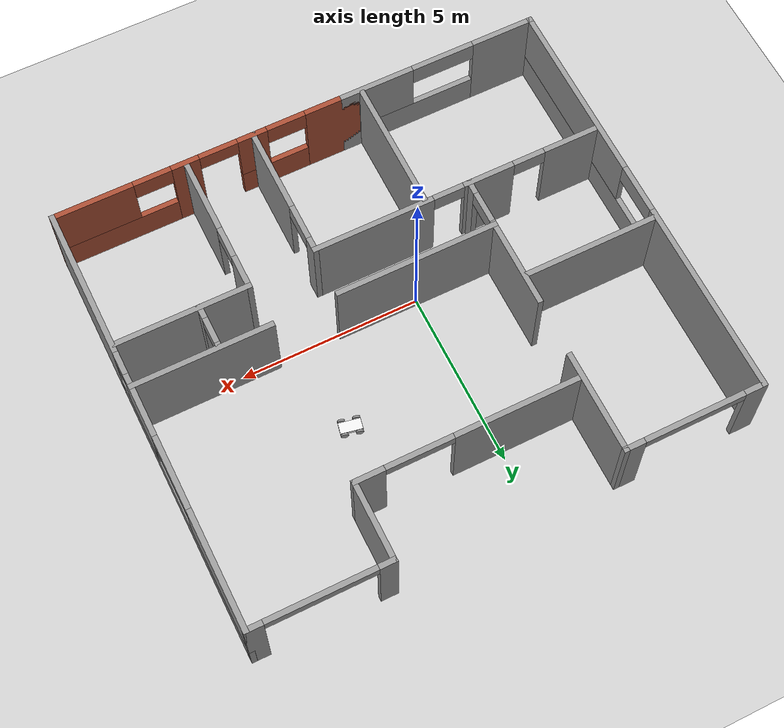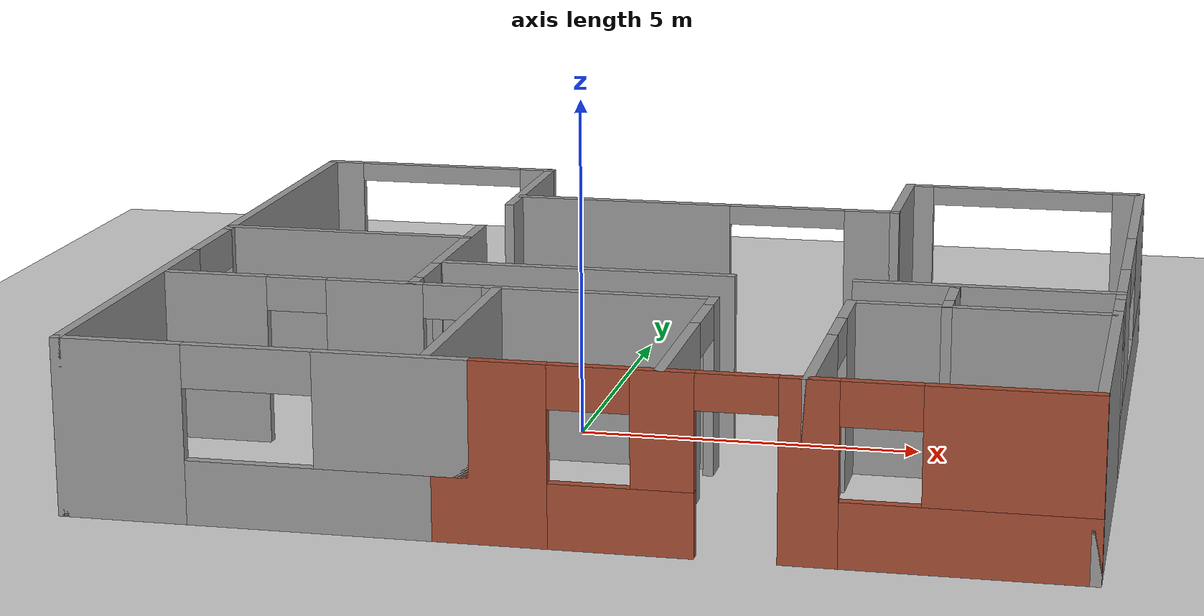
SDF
<sdf version="1.6">
 <world name="default">
  <model name="ground_plane">
   <static>1</static>
   <link name="link">
    <collision name="collision">
     <geometry><plane><normal>0 0 1</normal><size>100 100</size></plane></geometry>
     <surface>
      <contact><collide_bitmask>65535</collide_bitmask></contact>
      <friction><ode><mu>100</mu><mu2>50</mu2></ode></friction>
     </surface>
    </collision>
    <visual name="visual">
     <cast_shadows>0</cast_shadows>
     <geometry><plane><normal>0 0 1</normal><size>100 100</size></plane></geometry>
     <material>
      <script><uri>file://media/materials/scripts/gazebo.material</uri><name>Gazebo/Grey</name></script>
     </material>
    </visual>
   </link>
  </model>
  <model name="house_14x12">
   <pose>0.906 0.85996 0 0 -0 0</pose>
   <link name="Wall_0">
    <pose>2.61541 -6 0 0 -0 0</pose>
    <visual name="Wall_0_Visual_0">
     <pose>-3.57818 0 1.25 0 -0 0</pose>
     <geometry><box><size>1.56302 0.15 2.5</size></box></geometry>
     <material>
      <script><uri>file://media/materials/scripts/gazebo.material</uri><name>Gazebo/Bricks</name></script>
      <ambient>1 1 1 1</ambient>
     </material>
     <meta><layer>0</layer></meta>
    </visual>
    <collision name="Wall_0_Collision_0">
     <geometry><box><size>1.56302 0.15 2.5</size></box></geometry>
     <pose>-3.57818 0 1.25 0 -0 0</pose>
    </collision>
    <visual name="Wall_0_Visual_1">
     <pose>0.622351 0 1.25 0 -0 0</pose>
     <geometry><box><size>0.782201 0.15 2.5</size></box></geometry>
     <material>
      <script><uri>file://media/materials/scripts/gazebo.material</uri><name>Gazebo/Bricks</name></script>
      <ambient>1 1 1 1</ambient>
     </material>
     <meta><layer>0</layer></meta>
    </visual>
    <collision name="Wall_0_Collision_1">
     <geometry><box><size>0.782201 0.15 2.5</size></box></geometry>
     <pose>0.622351 0 1.25 0 -0 0</pose>
    </collision>
    <visual name="Wall_0_Visual_2">
     <pose>-1.82581 0 0.45 0 -0 0</pose>
     <geometry><box><size>1.94171 0.15 0.9</size></box></geometry>
     <material>
      <script><uri>file://media/materials/scripts/gazebo.material</uri><name>Gazebo/Bricks</name></script>
      <ambient>1 1 1 1</ambient>
     </material>
     <meta><layer>0</layer></meta>
    </visual>
    <collision name="Wall_0_Collision_2">
     <geometry><box><size>1.94171 0.15 0.9</size></box></geometry>
     <pose>-1.82581 0 0.45 0 -0 0</pose>
    </collision>
    <visual name="Wall_0_Visual_3">
     <pose>2.68657 0 0.45 0 -0 0</pose>
     <geometry><box><size>3.34624 0.15 0.9</size></box></geometry>
     <material>
      <script><uri>file://media/materials/scripts/gazebo.material</uri><name>Gazebo/Bricks</name></script>
      <ambient>1 1 1 1</ambient>
     </material>
     <meta><layer>0</layer></meta>
    </visual>
    <collision name="Wall_0_Collision_3">
     <geometry><box><size>3.34624 0.15 0.9</size></box></geometry>
     <pose>2.68657 0 0.45 0 -0 0</pose>
    </collision>
    <visual name="Wall_0_Visual_4">
     <pose>-1.27581 0 1.7 0 -0 0</pose>
     <geometry><box><size>0.841714 0.15 1.6</size></box></geometry>
     <material>
      <script><uri>file://media/materials/scripts/gazebo.material</uri><name>Gazebo/Bricks</name></script>
      <ambient>1 1 1 1</ambient>
     </material>
     <meta><layer>0</layer></meta>
    </visual>
    <collision name="Wall_0_Collision_4">
     <geometry><box><size>0.841714 0.15 1.6</size></box></geometry>
     <pose>-1.27581 0 1.7 0 -0 0</pose>
    </collision>
    <visual name="Wall_0_Visual_5">
     <pose>-1.27581 0 1.7 0 -0 0</pose>
     <geometry><box><size>0.841714 0.15 1.6</size></box></geometry>
     <material>
      <script><uri>file://media/materials/scripts/gazebo.material</uri><name>Gazebo/Bricks</name></script>
      <ambient>1 1 1 1</ambient>
     </material>
     <meta><layer>0</layer></meta>
    </visual>
    <collision name="Wall_0_Collision_5">
     <geometry><box><size>0.841714 0.15 1.6</size></box></geometry>
     <pose>-1.27581 0 1.7 0 -0 0</pose>
    </collision>
    <visual name="Wall_0_Visual_6">
     <pose>3.21657 0 1.7 0 -0 0</pose>
     <geometry><box><size>2.28624 0.15 1.6</size></box></geometry>
     <material>
      <script><uri>file://media/materials/scripts/gazebo.material</uri><name>Gazebo/Bricks</name></script>
      <ambient>1 1 1 1</ambient>
     </material>
     <meta><layer>0</layer></meta>
    </visual>
    <collision name="Wall_0_Collision_6">
     <geometry><box><size>2.28624 0.15 1.6</size></box></geometry>
     <pose>3.21657 0 1.7 0 -0 0</pose>
    </collision>
    <visual name="Wall_0_Visual_7">
     <pose>-2.24667 0 2.2 0 -0 0</pose>
     <geometry><box><size>1.1 0.15 0.6</size></box></geometry>
     <material>
      <script><uri>file://media/materials/scripts/gazebo.material</uri><name>Gazebo/Bricks</name></script>
      <ambient>1 1 1 1</ambient>
     </material>
     <meta><layer>0</layer></meta>
    </visual>
    <collision name="Wall_0_Collision_7">
     <geometry><box><size>1.1 0.15 0.6</size></box></geometry>
     <pose>-2.24667 0 2.2 0 -0 0</pose>
    </collision>
    <visual name="Wall_0_Visual_8">
     <pose>1.54345 0 2.2 0 -0 0</pose>
     <geometry><box><size>1.06 0.15 0.6</size></box></geometry>
     <material>
      <script><uri>file://media/materials/scripts/gazebo.material</uri><name>Gazebo/Bricks</name></script>
      <ambient>1 1 1 1</ambient>
     </material>
     <meta><layer>0</layer></meta>
    </visual>
    <collision name="Wall_0_Collision_8">
     <geometry><box><size>1.06 0.15 0.6</size></box></geometry>
     <pose>1.54345 0 2.2 0 -0 0</pose>
    </collision>
    <visual name="Wall_0_Visual_9">
     <pose>-0.311851 0 2.25 0 -0 0</pose>
     <geometry><box><size>1.0862 0.15 0.5</size></box></geometry>
     <material>
      <script><uri>file://media/materials/scripts/gazebo.material</uri><name>Gazebo/Bricks</name></script>
      <ambient>1 1 1 1</ambient>
     </material>
     <meta><layer>0</layer></meta>
    </visual>
    <collision name="Wall_0_Collision_9">
     <geometry><box><size>1.0862 0.15 0.5</size></box></geometry>
     <pose>-0.311851 0 2.25 0 -0 0</pose>
    </collision>
    <visual name="Wall_0_Visual_10">
     <pose>-0.311851 0 2.25 0 -0 0</pose>
     <geometry><box><size>1.0862 0.15 0.5</size></box></geometry>
     <material>
      <script><uri>file://media/materials/scripts/gazebo.material</uri><name>Gazebo/Bricks</name></script>
      <ambient>1 1 1 1</ambient>
     </material>
     <meta><layer>0</layer></meta>
    </visual>
    <collision name="Wall_0_Collision_10">
     <geometry><box><size>1.0862 0.15 0.5</size></box></geometry>
     <pose>-0.311851 0 2.25 0 -0 0</pose>
    </collision>
   </link>
   <link name="Wall_1">
    <pose>6.89991 0 0 0 -0 1.5708</pose>
    <visual name="Wall_1_Visual_0">
     <pose>-3.93298 0 1.25 0 -0 0</pose>
     <geometry><box><size>4.28404 0.15 2.5</size></box></geometry>
     <material>
      <script><uri>file://media/materials/scripts/gazebo.material</uri><name>Gazebo/Grey</name></script>
      <ambient>1 1 1 1</ambient>
     </material>
     <meta><layer>0</layer></meta>
    </visual>
    <collision name="Wall_1_Collision_0">
     <geometry><box><size>4.28404 0.15 2.5</size></box></geometry>
     <pose>-3.93298 0 1.25 0 -0 0</pose>
    </collision>
    <visual name="Wall_1_Visual_1">
     <pose>2.14202 0 0.45 0 -0 0</pose>
     <geometry><box><size>7.86596 0.15 0.9</size></box></geometry>
     <material>
      <script><uri>file://media/materials/scripts/gazebo.material</uri><name>Gazebo/Grey</name></script>
      <ambient>1 1 1 1</ambient>
     </material>
     <meta><layer>0</layer></meta>
    </visual>
    <collision name="Wall_1_Collision_1">
     <geometry><box><size>7.86596 0.15 0.9</size></box></geometry>
     <pose>2.14202 0 0.45 0 -0 0</pose>
    </collision>
    <visual name="Wall_1_Visual_2">
     <pose>-0.22565 0 1.7 0 -0 0</pose>
     <geometry><box><size>1.81063 0.15 1.6</size></box></geometry>
     <material>
      <script><uri>file://media/materials/scripts/gazebo.material</uri><name>Gazebo/Grey</name></script>
      <ambient>1 1 1 1</ambient>
     </material>
     <meta><layer>0</layer></meta>
    </visual>
    <collision name="Wall_1_Collision_2">
     <geometry><box><size>1.81063 0.15 1.6</size></box></geometry>
     <pose>-0.22565 0 1.7 0 -0 0</pose>
    </collision>
    <visual name="Wall_1_Visual_3">
     <pose>4.40773 0 1.7 0 -0 0</pose>
     <geometry><box><size>3.33453 0.15 1.6</size></box></geometry>
     <material>
      <script><uri>file://media/materials/scripts/gazebo.material</uri><name>Gazebo/Grey</name></script>
      <ambient>1 1 1 1</ambient>
     </material>
     <meta><layer>0</layer></meta>
    </visual>
    <collision name="Wall_1_Collision_3">
     <geometry><box><size>3.33453 0.15 1.6</size></box></geometry>
     <pose>4.40773 0 1.7 0 -0 0</pose>
    </collision>
    <visual name="Wall_1_Visual_4">
     <pose>-1.46096 0 2.2 0 -0 0</pose>
     <geometry><box><size>0.66 0.15 0.6</size></box></geometry>
     <material>
      <script><uri>file://media/materials/scripts/gazebo.material</uri><name>Gazebo/Grey</name></script>
      <ambient>1 1 1 1</ambient>
     </material>
     <meta><layer>0</layer></meta>
    </visual>
    <collision name="Wall_1_Collision_4">
     <geometry><box><size>0.66 0.15 0.6</size></box></geometry>
     <pose>-1.46096 0 2.2 0 -0 0</pose>
    </collision>
    <visual name="Wall_1_Visual_5">
     <pose>1.71007 0 2.2 0 -0 0</pose>
     <geometry><box><size>2.06081 0.15 0.6</size></box></geometry>
     <material>
      <script><uri>file://media/materials/scripts/gazebo.material</uri><name>Gazebo/Grey</name></script>
      <ambient>1 1 1 1</ambient>
     </material>
     <meta><layer>0</layer></meta>
    </visual>
    <collision name="Wall_1_Collision_5">
     <geometry><box><size>2.06081 0.15 0.6</size></box></geometry>
     <pose>1.71007 0 2.2 0 -0 0</pose>
    </collision>
   </link>
   <link name="Wall_11">
    <pose>-2.72509 -2.2 0 0 -0 0</pose>
    <visual name="Wall_11_Visual_0">
     <pose>-3.32192 0 1.25 0 -0 0</pose>
     <geometry><box><size>1.55616 0.15 2.5</size></box></geometry>
     <material>
      <script><uri>file://media/materials/scripts/gazebo.material</uri><name>Gazebo/Grey</name></script>
      <ambient>1 1 1 1</ambient>
     </material>
     <meta><layer>0</layer></meta>
    </visual>
    <collision name="Wall_11_Collision_0">
     <geometry><box><size>1.55616 0.15 2.5</size></box></geometry>
     <pose>-3.32192 0 1.25 0 -0 0</pose>
    </collision>
    <visual name="Wall_11_Visual_1">
     <pose>-0.918635 0 1.25 0 -0 0</pose>
     <geometry><box><size>1.45041 0.15 2.5</size></box></geometry>
     <material>
      <script><uri>file://media/materials/scripts/gazebo.material</uri><name>Gazebo/Grey</name></script>
      <ambient>1 1 1 1</ambient>
     </material>
     <meta><layer>0</layer></meta>
    </visual>
    <collision name="Wall_11_Collision_1">
     <geometry><box><size>1.45041 0.15 2.5</size></box></geometry>
     <pose>-0.918635 0 1.25 0 -0 0</pose>
    </collision>
    <visual name="Wall_11_Visual_2">
     <pose>2.38808 0 1.25 0 -0 0</pose>
     <geometry><box><size>3.42385 0.15 2.5</size></box></geometry>
     <material>
      <script><uri>file://media/materials/scripts/gazebo.material</uri><name>Gazebo/Grey</name></script>
      <ambient>1 1 1 1</ambient>
     </material>
     <meta><layer>0</layer></meta>
    </visual>
    <collision name="Wall_11_Collision_2">
     <geometry><box><size>3.42385 0.15 2.5</size></box></geometry>
     <pose>2.38808 0 1.25 0 -0 0</pose>
    </collision>
    <visual name="Wall_11_Visual_3">
     <pose>-2.09384 0 2.25 0 -0 0</pose>
     <geometry><box><size>0.9 0.15 0.5</size></box></geometry>
     <material>
      <script><uri>file://media/materials/scripts/gazebo.material</uri><name>Gazebo/Grey</name></script>
      <ambient>1 1 1 1</ambient>
     </material>
     <meta><layer>0</layer></meta>
    </visual>
    <collision name="Wall_11_Collision_3">
     <geometry><box><size>0.9 0.15 0.5</size></box></geometry>
     <pose>-2.09384 0 2.25 0 -0 0</pose>
    </collision>
    <visual name="Wall_11_Visual_4">
     <pose>0.241361 0 2.25 0 -0 0</pose>
     <geometry><box><size>0.869582 0.15 0.5</size></box></geometry>
     <material>
      <script><uri>file://media/materials/scripts/gazebo.material</uri><name>Gazebo/Grey</name></script>
      <ambient>1 1 1 1</ambient>
     </material>
     <meta><layer>0</layer></meta>
    </visual>
    <collision name="Wall_11_Collision_4">
     <geometry><box><size>0.869582 0.15 0.5</size></box></geometry>
     <pose>0.241361 0 2.25 0 -0 0</pose>
    </collision>
   </link>
   <link name="Wall_12">
    <pose>1.29991 -4.1 0 0 -0 -1.5708</pose>
    <visual name="Wall_12_Visual_0">
     <pose>-1.74899 0 1.25 0 -0 0</pose>
     <geometry><box><size>0.452027 0.15 2.5</size></box></geometry>
     <material>
      <script><uri>file://media/materials/scripts/gazebo.material</uri><name>Gazebo/Grey</name></script>
      <ambient>1 1 1 1</ambient>
     </material>
     <meta><layer>0</layer></meta>
    </visual>
    <collision name="Wall_12_Collision_0">
     <geometry><box><size>0.452027 0.15 2.5</size></box></geometry>
     <pose>-1.74899 0 1.25 0 -0 0</pose>
    </collision>
    <visual name="Wall_12_Visual_1">
     <pose>0.736883 0 1.25 0 -0 0</pose>
     <geometry><box><size>2.47623 0.15 2.5</size></box></geometry>
     <material>
      <script><uri>file://media/materials/scripts/gazebo.material</uri><name>Gazebo/Grey</name></script>
      <ambient>1 1 1 1</ambient>
     </material>
     <meta><layer>0</layer></meta>
    </visual>
    <collision name="Wall_12_Collision_1">
     <geometry><box><size>2.47623 0.15 2.5</size></box></geometry>
     <pose>0.736883 0 1.25 0 -0 0</pose>
    </collision>
    <visual name="Wall_12_Visual_2">
     <pose>-1.0121 0 2.25 0 -0 0</pose>
     <geometry><box><size>1.02174 0.15 0.5</size></box></geometry>
     <material>
      <script><uri>file://media/materials/scripts/gazebo.material</uri><name>Gazebo/Grey</name></script>
      <ambient>1 1 1 1</ambient>
     </material>
     <meta><layer>0</layer></meta>
    </visual>
    <collision name="Wall_12_Collision_2">
     <geometry><box><size>1.02174 0.15 0.5</size></box></geometry>
     <pose>-1.0121 0 2.25 0 -0 0</pose>
    </collision>
   </link>
   <link name="Wall_18">
    <pose>3.21491 -4 0 0 -0 1.5708</pose>
    <visual name="Wall_18_Visual_0">
     <pose>-0.955553 0 1.25 0 -0 0</pose>
     <geometry><box><size>2.23889 0.15 2.5</size></box></geometry>
     <material>
      <script><uri>file://media/materials/scripts/gazebo.material</uri><name>Gazebo/Grey</name></script>
      <ambient>1 1 1 1</ambient>
     </material>
     <meta><layer>0</layer></meta>
    </visual>
    <collision name="Wall_18_Collision_0">
     <geometry><box><size>2.23889 0.15 2.5</size></box></geometry>
     <pose>-0.955553 0 1.25 0 -0 0</pose>
    </collision>
    <visual name="Wall_18_Visual_1">
     <pose>1.56945 0 1.25 0 -0 0</pose>
     <geometry><box><size>1.01111 0.15 2.5</size></box></geometry>
     <material>
      <script><uri>file://media/materials/scripts/gazebo.material</uri><name>Gazebo/Grey</name></script>
      <ambient>1 1 1 1</ambient>
     </material>
     <meta><layer>0</layer></meta>
    </visual>
    <collision name="Wall_18_Collision_1">
     <geometry><box><size>1.01111 0.15 2.5</size></box></geometry>
     <pose>1.56945 0 1.25 0 -0 0</pose>
    </collision>
    <visual name="Wall_18_Visual_2">
     <pose>0.613894 0 2.25 0 -0 0</pose>
     <geometry><box><size>0.9 0.15 0.5</size></box></geometry>
     <material>
      <script><uri>file://media/materials/scripts/gazebo.material</uri><name>Gazebo/Grey</name></script>
      <ambient>1 1 1 1</ambient>
     </material>
     <meta><layer>0</layer></meta>
    </visual>
    <collision name="Wall_18_Collision_2">
     <geometry><box><size>0.9 0.15 0.5</size></box></geometry>
     <pose>0.613894 0 2.25 0 -0 0</pose>
    </collision>
   </link>
   <link name="Wall_19">
    <collision name="Wall_19_Collision">
     <geometry><box><size>3.7615 0.15 2.5</size></box></geometry>
     <pose>0 0 1.25 0 -0 0</pose>
    </collision>
    <visual name="Wall_19_Visual">
     <pose>0 0 1.25 0 -0 0</pose>
     <geometry><box><size>3.7615 0.15 2.5</size></box></geometry>
     <material>
      <script><uri>file://media/materials/scripts/gazebo.material</uri><name>Gazebo/Grey</name></script>
      <ambient>1 1 1 1</ambient>
     </material>
     <meta><layer>0</layer></meta>
    </visual>
    <pose>5.02041 -2 0 0 -0 0</pose>
   </link>
   <link name="Wall_2">
    <pose>5.01241 6 0 0 -0 3.14159</pose>
    <visual name="Wall_2_Visual_0">
     <pose>-1.7071 0 1.25 0 -0 0</pose>
     <geometry><box><size>0.510804 0.15 2.5</size></box></geometry>
     <material>
      <script><uri>file://media/materials/scripts/gazebo.material</uri><name>Gazebo/Grey</name></script>
      <ambient>1 1 1 1</ambient>
     </material>
     <meta><layer>0</layer></meta>
    </visual>
    <collision name="Wall_2_Collision_0">
     <geometry><box><size>0.510804 0.15 2.5</size></box></geometry>
     <pose>-1.7071 0 1.25 0 -0 0</pose>
    </collision>
    <visual name="Wall_2_Visual_1">
     <pose>1.7244 0 1.25 0 -0 0</pose>
     <geometry><box><size>0.476196 0.15 2.5</size></box></geometry>
     <material>
      <script><uri>file://media/materials/scripts/gazebo.material</uri><name>Gazebo/Grey</name></script>
      <ambient>1 1 1 1</ambient>
     </material>
     <meta><layer>0</layer></meta>
    </visual>
    <collision name="Wall_2_Collision_1">
     <geometry><box><size>0.476196 0.15 2.5</size></box></geometry>
     <pose>1.7244 0 1.25 0 -0 0</pose>
    </collision>
    <visual name="Wall_2_Visual_3">
     <pose>0.017304 0 2.35 0 -0 0</pose>
     <geometry><box><size>2.938 0.15 0.3</size></box></geometry>
     <material>
      <script><uri>file://media/materials/scripts/gazebo.material</uri><name>Gazebo/Grey</name></script>
      <ambient>1 1 1 1</ambient>
     </material>
     <meta><layer>0</layer></meta>
    </visual>
    <collision name="Wall_2_Collision_3">
     <geometry><box><size>2.938 0.15 0.3</size></box></geometry>
     <pose>0.017304 0 2.35 0 -0 0</pose>
    </collision>
   </link>
   <link name="Wall_28">
    <collision name="Wall_28_Collision">
     <geometry><box><size>2.282 0.15 2.5</size></box></geometry>
     <pose>0 0 1.25 0 -0 0</pose>
    </collision>
    <visual name="Wall_28_Visual">
     <pose>0 0 1.25 0 -0 0</pose>
     <geometry><box><size>2.282 0.15 2.5</size></box></geometry>
     <material>
      <script><uri>file://media/materials/scripts/gazebo.material</uri><name>Gazebo/Grey</name></script>
      <ambient>1 1 1 1</ambient>
     </material>
     <meta><layer>0</layer></meta>
    </visual>
    <pose>3.12491 4.934 0 0 -0 -1.5708</pose>
   </link>
   <link name="Wall_29">
    <pose>0.074526 3.86793 0 0 -0 -3.14157</pose>
    <visual name="Wall_29_Visual_0">
     <pose>-2.68601 0 1.25 0 -0 0</pose>
     <geometry><box><size>0.877987 0.15 2.5</size></box></geometry>
     <material>
      <script><uri>file://media/materials/scripts/gazebo.material</uri><name>Gazebo/Grey</name></script>
      <ambient>1 1 1 1</ambient>
     </material>
     <meta><layer>0</layer></meta>
    </visual>
    <collision name="Wall_29_Collision_0">
     <geometry><box><size>0.877987 0.15 2.5</size></box></geometry>
     <pose>-2.68601 0 1.25 0 -0 0</pose>
    </collision>
    <visual name="Wall_29_Visual_1">
     <pose>1.36719 0 1.25 0 -0 0</pose>
     <geometry><box><size>3.51562 0.15 2.5</size></box></geometry>
     <material>
      <script><uri>file://media/materials/scripts/gazebo.material</uri><name>Gazebo/Grey</name></script>
      <ambient>1 1 1 1</ambient>
     </material>
     <meta><layer>0</layer></meta>
    </visual>
    <collision name="Wall_29_Collision_1">
     <geometry><box><size>3.51562 0.15 2.5</size></box></geometry>
     <pose>1.36719 0 1.25 0 -0 0</pose>
    </collision>
    <visual name="Wall_29_Visual_3">
     <pose>-1.31882 0 2.35 0 -0 0</pose>
     <geometry><box><size>1.85639 0.15 0.3</size></box></geometry>
     <material>
      <script><uri>file://media/materials/scripts/gazebo.material</uri><name>Gazebo/Grey</name></script>
      <ambient>1 1 1 1</ambient>
     </material>
     <meta><layer>0</layer></meta>
    </visual>
    <collision name="Wall_29_Collision_3">
     <geometry><box><size>1.85639 0.15 0.3</size></box></geometry>
     <pose>-1.31882 0 2.35 0 -0 0</pose>
    </collision>
   </link>
   <link name="Wall_31">
    <collision name="Wall_31_Collision">
     <geometry><box><size>3.9 0.15 2.5</size></box></geometry>
     <pose>0 0 1.25 0 -0 0</pose>
    </collision>
    <visual name="Wall_31_Visual">
     <pose>0 0 1.25 0 -0 0</pose>
     <geometry><box><size>3.9 0.15 2.5</size></box></geometry>
     <material>
      <script><uri>file://media/materials/scripts/gazebo.material</uri><name>Gazebo/Grey</name></script>
      <ambient>1 1 1 1</ambient>
     </material>
     <meta><layer>0</layer></meta>
    </visual>
    <pose>5.02491 -0.774 0 0 -0 3.14159</pose>
   </link>
   <link name="Wall_33">
    <collision name="Wall_33_Collision">
     <geometry><box><size>3.92127 0.15 2.5</size></box></geometry>
     <pose>0 0 1.25 0 -0 0</pose>
    </collision>
    <visual name="Wall_33_Visual">
     <pose>0 0 1.25 0 -0 0</pose>
     <geometry><box><size>3.92127 0.15 2.5</size></box></geometry>
     <material>
      <script><uri>file://media/materials/scripts/gazebo.material</uri><name>Gazebo/Grey</name></script>
      <ambient>1 1 1 1</ambient>
     </material>
     <meta><layer>0</layer></meta>
    </visual>
    <pose>-4.99059 0.8 0 0 -0 0</pose>
   </link>
   <link name="Wall_39">
    <pose>4.55881 -1.45194 0 0 -0 -1.5708</pose>
    <visual name="Wall_39_Visual_0">
     <pose>-0.574981 0 1.25 0 -0 0</pose>
     <geometry><box><size>0.100037 0.15 2.5</size></box></geometry>
     <material>
      <script><uri>file://media/materials/scripts/gazebo.material</uri><name>Gazebo/Grey</name></script>
      <ambient>1 1 1 1</ambient>
     </material>
     <meta><layer>0</layer></meta>
    </visual>
    <collision name="Wall_39_Collision_0">
     <geometry><box><size>0.100037 0.15 2.5</size></box></geometry>
     <pose>-0.574981 0 1.25 0 -0 0</pose>
    </collision>
    <visual name="Wall_39_Visual_1">
     <pose>0.420121 0 1.25 0 -0 0</pose>
     <geometry><box><size>0.409758 0.15 2.5</size></box></geometry>
     <material>
      <script><uri>file://media/materials/scripts/gazebo.material</uri><name>Gazebo/Grey</name></script>
      <ambient>1 1 1 1</ambient>
     </material>
     <meta><layer>0</layer></meta>
    </visual>
    <collision name="Wall_39_Collision_1">
     <geometry><box><size>0.409758 0.15 2.5</size></box></geometry>
     <pose>0.420121 0 1.25 0 -0 0</pose>
    </collision>
    <visual name="Wall_39_Visual_2">
     <pose>-0.15486 0 2.25 0 -0 0</pose>
     <geometry><box><size>0.740204 0.15 0.5</size></box></geometry>
     <material>
      <script><uri>file://media/materials/scripts/gazebo.material</uri><name>Gazebo/Grey</name></script>
      <ambient>1 1 1 1</ambient>
     </material>
     <meta><layer>0</layer></meta>
    </visual>
    <collision name="Wall_39_Collision_2">
     <geometry><box><size>0.740204 0.15 0.5</size></box></geometry>
     <pose>-0.15486 0 2.25 0 -0 0</pose>
    </collision>
   </link>
   <link name="Wall_4">
    <collision name="Wall_4_Collision">
     <geometry><box><size>0.15 0.15 2.5</size></box></geometry>
     <pose>0 0 1.25 0 -0 0</pose>
    </collision>
    <visual name="Wall_4_Visual">
     <pose>0 0 1.25 0 -0 0</pose>
     <geometry><box><size>0.15 0.15 2.5</size></box></geometry>
     <material>
      <script><uri>file://media/materials/scripts/gazebo.material</uri><name>Gazebo/Grey</name></script>
      <ambient>1 1 1 1</ambient>
     </material>
     <meta><layer>0</layer></meta>
    </visual>
    <pose>3.12491 3.868 0 0 -0 0</pose>
   </link>
   <link name="Wall_41">
    <collision name="Wall_41_Collision">
     <geometry><box><size>4.544 0.15 2.5</size></box></geometry>
     <pose>0 0 1.25 0 -0 0</pose>
    </collision>
    <visual name="Wall_41_Visual">
     <pose>0 0 1.25 0 -0 0</pose>
     <geometry><box><size>4.544 0.15 2.5</size></box></geometry>
     <material>
      <script><uri>file://media/materials/scripts/gazebo.material</uri><name>Gazebo/Grey</name></script>
      <ambient>1 1 1 1</ambient>
     </material>
     <meta><layer>0</layer></meta>
    </visual>
    <pose>-0.897093 -0.828 0 0 -0 0</pose>
   </link>
   <link name="Wall_43">
    <pose>-3.09409 -0.314 0 0 -0 -1.5708</pose>
    <visual name="Wall_43_Visual_0">
     <pose>-0.663877 0 1.25 0 -0 0</pose>
     <geometry><box><size>2.59424 0.15 2.5</size></box></geometry>
     <material>
      <script><uri>file://media/materials/scripts/gazebo.material</uri><name>Gazebo/Grey</name></script>
      <ambient>1 1 1 1</ambient>
     </material>
     <meta><layer>0</layer></meta>
    </visual>
    <collision name="Wall_43_Collision_0">
     <geometry><box><size>2.59424 0.15 2.5</size></box></geometry>
     <pose>-0.663877 0 1.25 0 -0 0</pose>
    </collision>
    <visual name="Wall_43_Visual_1">
     <pose>1.74712 0 1.25 0 -0 0</pose>
     <geometry><box><size>0.427755 0.15 2.5</size></box></geometry>
     <material>
      <script><uri>file://media/materials/scripts/gazebo.material</uri><name>Gazebo/Grey</name></script>
      <ambient>1 1 1 1</ambient>
     </material>
     <meta><layer>0</layer></meta>
    </visual>
    <collision name="Wall_43_Collision_1">
     <geometry><box><size>0.427755 0.15 2.5</size></box></geometry>
     <pose>1.74712 0 1.25 0 -0 0</pose>
    </collision>
    <visual name="Wall_43_Visual_2">
     <pose>1.08325 0 2.25 0 -0 0</pose>
     <geometry><box><size>0.9 0.15 0.5</size></box></geometry>
     <material>
      <script><uri>file://media/materials/scripts/gazebo.material</uri><name>Gazebo/Grey</name></script>
      <ambient>1 1 1 1</ambient>
     </material>
     <meta><layer>0</layer></meta>
    </visual>
    <collision name="Wall_43_Collision_2">
     <geometry><box><size>0.9 0.15 0.5</size></box></geometry>
     <pose>1.08325 0 2.25 0 -0 0</pose>
    </collision>
   </link>
   <link name="Wall_48">
    <collision name="Wall_48_Collision">
     <geometry><box><size>3.75 0.15 2.5</size></box></geometry>
     <pose>0 0 1.25 0 -0 0</pose>
    </collision>
    <visual name="Wall_48_Visual">
     <pose>0 0 1.25 0 -0 0</pose>
     <geometry><box><size>3.75 0.15 2.5</size></box></geometry>
     <material>
      <script><uri>file://media/materials/scripts/gazebo.material</uri><name>Gazebo/Grey</name></script>
      <ambient>1 1 1 1</ambient>
     </material>
     <meta><layer>0</layer></meta>
    </visual>
    <pose>-1.83018 -4.09551 0 0 -0 -1.5708</pose>
   </link>
   <link name="Wall_6">
    <collision name="Wall_6_Collision">
     <geometry><box><size>2.903 0.15 2.5</size></box></geometry>
     <pose>0 0 1.25 0 -0 0</pose>
    </collision>
    <visual name="Wall_6_Visual">
     <pose>0 0 1.25 0 -0 0</pose>
     <geometry><box><size>2.903 0.15 2.5</size></box></geometry>
     <material>
      <script><uri>file://media/materials/scripts/gazebo.material</uri><name>Gazebo/Grey</name></script>
      <ambient>1 1 1 1</ambient>
     </material>
     <meta><layer>0</layer></meta>
    </visual>
    <pose>-3.04509 4.6235 0 0 -0 1.5708</pose>
   </link>
   <link name="Wall_7">
    <pose>-4.97259 6 0 0 -0 3.14159</pose>
    <visual name="Wall_7_Visual_0">
     <pose>-1.70332 0 1.25 0 -0 0</pose>
     <geometry><box><size>0.598358 0.15 2.5</size></box></geometry>
     <material>
      <script><uri>file://media/materials/scripts/gazebo.material</uri><name>Gazebo/Grey</name></script>
      <ambient>1 1 1 1</ambient>
     </material>
     <meta><layer>0</layer></meta>
    </visual>
    <collision name="Wall_7_Collision_0">
     <geometry><box><size>0.598358 0.15 2.5</size></box></geometry>
     <pose>-1.70332 0 1.25 0 -0 0</pose>
    </collision>
    <visual name="Wall_7_Visual_1">
     <pose>1.69168 0 1.25 0 -0 0</pose>
     <geometry><box><size>0.621642 0.15 2.5</size></box></geometry>
     <material>
      <script><uri>file://media/materials/scripts/gazebo.material</uri><name>Gazebo/Grey</name></script>
      <ambient>1 1 1 1</ambient>
     </material>
     <meta><layer>0</layer></meta>
    </visual>
    <collision name="Wall_7_Collision_1">
     <geometry><box><size>0.621642 0.15 2.5</size></box></geometry>
     <pose>1.69168 0 1.25 0 -0 0</pose>
    </collision>
    <visual name="Wall_7_Visual_3">
     <pose>-0.011642 0 2.35 0 -0 0</pose>
     <geometry><box><size>2.785 0.15 0.3</size></box></geometry>
     <material>
      <script><uri>file://media/materials/scripts/gazebo.material</uri><name>Gazebo/Grey</name></script>
      <ambient>1 1 1 1</ambient>
     </material>
     <meta><layer>0</layer></meta>
    </visual>
    <collision name="Wall_7_Collision_3">
     <geometry><box><size>2.785 0.15 0.3</size></box></geometry>
     <pose>-0.011642 0 2.35 0 -0 0</pose>
    </collision>
   </link>
   <link name="Wall_8">
    <pose>-6.90009 0 0 0 -0 -1.5708</pose>
    <visual name="Wall_8_Visual_0">
     <pose>-3.3273 0 1.25 0 -0 0</pose>
     <geometry><box><size>5.4954 0.15 2.5</size></box></geometry>
     <material>
      <script><uri>file://media/materials/scripts/gazebo.material</uri><name>Gazebo/Grey</name></script>
      <ambient>1 1 1 1</ambient>
     </material>
     <meta><layer>0</layer></meta>
    </visual>
    <collision name="Wall_8_Collision_0">
     <geometry><box><size>5.4954 0.15 2.5</size></box></geometry>
     <pose>-3.3273 0 1.25 0 -0 0</pose>
    </collision>
    <visual name="Wall_8_Visual_1">
     <pose>2.7477 0 0.45 0 -0 0</pose>
     <geometry><box><size>6.6546 0.15 0.9</size></box></geometry>
     <material>
      <script><uri>file://media/materials/scripts/gazebo.material</uri><name>Gazebo/Grey</name></script>
      <ambient>1 1 1 1</ambient>
     </material>
     <meta><layer>0</layer></meta>
    </visual>
    <collision name="Wall_8_Collision_1">
     <geometry><box><size>6.6546 0.15 0.9</size></box></geometry>
     <pose>2.7477 0 0.45 0 -0 0</pose>
    </collision>
    <visual name="Wall_8_Visual_2">
     <pose>3.4477 0 1.7 0 -0 0</pose>
     <geometry><box><size>5.2546 0.15 1.6</size></box></geometry>
     <material>
      <script><uri>file://media/materials/scripts/gazebo.material</uri><name>Gazebo/Grey</name></script>
      <ambient>1 1 1 1</ambient>
     </material>
     <meta><layer>0</layer></meta>
    </visual>
    <collision name="Wall_8_Collision_2">
     <geometry><box><size>5.2546 0.15 1.6</size></box></geometry>
     <pose>3.4477 0 1.7 0 -0 0</pose>
    </collision>
    <visual name="Wall_8_Visual_3">
     <pose>0.120401 0 2.2 0 -0 0</pose>
     <geometry><box><size>1.4 0.15 0.6</size></box></geometry>
     <material>
      <script><uri>file://media/materials/scripts/gazebo.material</uri><name>Gazebo/Grey</name></script>
      <ambient>1 1 1 1</ambient>
     </material>
     <meta><layer>0</layer></meta>
    </visual>
    <collision name="Wall_8_Collision_3">
     <geometry><box><size>1.4 0.15 0.6</size></box></geometry>
     <pose>0.120401 0 2.2 0 -0 0</pose>
    </collision>
   </link>
   <link name="Wall_9">
    <pose>-4.10159 -6 0 0 -0 0</pose>
    <visual name="Wall_9_Visual_0">
     <pose>-1.95745 0 1.25 0 -0 0</pose>
     <geometry><box><size>1.83168 0.15 2.5</size></box></geometry>
     <material>
      <script><uri>file://media/materials/scripts/gazebo.material</uri><name>Gazebo/Grey</name></script>
      <ambient>1 1 1 1</ambient>
     </material>
     <meta><layer>0</layer></meta>
    </visual>
    <collision name="Wall_9_Collision_0">
     <geometry><box><size>1.83168 0.15 2.5</size></box></geometry>
     <pose>-1.95745 0 1.25 0 -0 0</pose>
    </collision>
    <visual name="Wall_9_Visual_1">
     <pose>0.915838 0 0.45 0 -0 0</pose>
     <geometry><box><size>3.9149 0.15 0.9</size></box></geometry>
     <material>
      <script><uri>file://media/materials/scripts/gazebo.material</uri><name>Gazebo/Grey</name></script>
      <ambient>1 1 1 1</ambient>
     </material>
     <meta><layer>0</layer></meta>
    </visual>
    <collision name="Wall_9_Collision_1">
     <geometry><box><size>3.9149 0.15 0.9</size></box></geometry>
     <pose>0.915838 0 0.45 0 -0 0</pose>
    </collision>
    <visual name="Wall_9_Visual_2">
     <pose>1.81584 0 1.7 0 -0 0</pose>
     <geometry><box><size>2.1149 0.15 1.6</size></box></geometry>
     <material>
      <script><uri>file://media/materials/scripts/gazebo.material</uri><name>Gazebo/Grey</name></script>
      <ambient>1 1 1 1</ambient>
     </material>
     <meta><layer>0</layer></meta>
    </visual>
    <collision name="Wall_9_Collision_2">
     <geometry><box><size>2.1149 0.15 1.6</size></box></geometry>
     <pose>1.81584 0 1.7 0 -0 0</pose>
    </collision>
    <visual name="Wall_9_Visual_3">
     <pose>-0.141611 0 2.2 0 -0 0</pose>
     <geometry><box><size>1.8 0.15 0.6</size></box></geometry>
     <material>
      <script><uri>file://media/materials/scripts/gazebo.material</uri><name>Gazebo/Grey</name></script>
      <ambient>1 1 1 1</ambient>
     </material>
     <meta><layer>0</layer></meta>
    </visual>
    <collision name="Wall_9_Collision_3">
     <geometry><box><size>1.8 0.15 0.6</size></box></geometry>
     <pose>-0.141611 0 2.2 0 -0 0</pose>
    </collision>
   </link>
   <static>1</static>
  </model>
  <model name="simple_4_wheeled_white">
   <link name="chassis">
    <pose>-0 0 0.1 0 -0 0</pose>
    <inertial>
     <mass>0.5</mass>
     <inertia>
      <ixx>0.166667</ixx>
      <ixy>0</ixy>
      <ixz>0</ixz>
      <iyy>0.166667</iyy>
      <iyz>0</iyz>
      <izz>0.166667</izz>
     </inertia>
    </inertial>
    <visual name="visual">
     <geometry><box><size>0.6 0.3 0.1</size></box></geometry>
     <material>
      <lighting>1</lighting>
      <script><uri>file://media/materials/scripts/gazebo.material</uri><name>Gazebo/White</name></script>
      <shader type="pixel"><normal_map>__default__</normal_map></shader>
      <ambient>0.9 0.9 0.9 1</ambient>
      <diffuse>0.9 0.9 0.9 1</diffuse>
      <specular>0.9 0.9 0.9 1</specular>
      <emissive>0.9 0.9 0.9 1</emissive>
     </material>
    </visual>
    <collision name="collision">
     <geometry><box><size>0.6 0.3 0.1</size></box></geometry>
     <surface>
      <friction>
       <ode><mu>1</mu><mu2>1</mu2><fdir1>0 0 0</fdir1><slip1>0</slip1><slip2>0</slip2></ode>
       <torsional>
        <coefficient>1</coefficient>
        <patch_radius>0</patch_radius>
        <surface_radius>0</surface_radius>
        <use_patch_radius>1</use_patch_radius>
        <ode><slip>0</slip></ode>
       </torsional>
      </friction>
      <bounce><restitution_coefficient>0</restitution_coefficient><threshold>1e+06</threshold></bounce>
      <contact>
       <collide_without_contact>0</collide_without_contact>
       <collide_without_contact_bitmask>1</collide_without_contact_bitmask>
       <collide_bitmask>1</collide_bitmask>
       <ode>
        <soft_cfm>0</soft_cfm>
        <soft_erp>0.2</soft_erp>
        <kp>1e+13</kp>
        <kd>1</kd>
        <max_vel>0.01</max_vel>
        <min_depth>0</min_depth>
       </ode>
       <bullet>
        <split_impulse>1</split_impulse>
        <split_impulse_penetration_threshold>-0.01</split_impulse_penetration_threshold>
        <soft_cfm>0</soft_cfm>
        <soft_erp>0.2</soft_erp>
        <kp>1e+13</kp>
        <kd>1</kd>
       </bullet>
      </contact>
     </surface>
    </collision>
   </link>
   <link name="front_left">
    <pose>0.2 0.2 0.1 1.57 -0 0</pose>
    <inertial>
     <mass>0.1</mass>
     <inertia><ixx>0.145833</ixx><ixy>0</ixy><ixz>0</ixz><iyy>0.145833</iyy><iyz>0</iyz><izz>0.125</izz></inertia>
    </inertial>
    <visual name="visual">
     <geometry><cylinder><radius>0.1</radius><length>0.05</length></cylinder></geometry>
     <material>
      <lighting>1</lighting>
      <script><uri>file://media/materials/scripts/gazebo.material</uri><name>Gazebo/Grey</name></script>
      <shader type="pixel"><normal_map>__default__</normal_map></shader>
      <ambient>0.3 0.3 0.3 1</ambient>
      <diffuse>0.7 0.7 0.7 1</diffuse>
      <specular>0.01 0.01 0.01 1</specular>
      <emissive>0 0 0 1</emissive>
     </material>
    </visual>
    <collision name="collision">
     <geometry><cylinder><radius>0.1</radius><length>0.05</length></cylinder></geometry>
     <surface>
      <friction>
       <ode><mu>1</mu><mu2>1</mu2><fdir1>0 0 0</fdir1><slip1>0</slip1><slip2>0</slip2></ode>
       <torsional>
        <coefficient>1</coefficient>
        <patch_radius>0</patch_radius>
        <surface_radius>0</surface_radius>
        <use_patch_radius>1</use_patch_radius>
        <ode><slip>0</slip></ode>
       </torsional>
      </friction>
      <bounce><restitution_coefficient>0</restitution_coefficient><threshold>1e+06</threshold></bounce>
      <contact>
       <collide_without_contact>0</collide_without_contact>
       <collide_without_contact_bitmask>1</collide_without_contact_bitmask>
       <collide_bitmask>1</collide_bitmask>
       <ode>
        <soft_cfm>0</soft_cfm>
        <soft_erp>0.2</soft_erp>
        <kp>1e+13</kp>
        <kd>1</kd>
        <max_vel>0.01</max_vel>
        <min_depth>0</min_depth>
       </ode>
       <bullet>
        <split_impulse>1</split_impulse>
        <split_impulse_penetration_threshold>-0.01</split_impulse_penetration_threshold>
        <soft_cfm>0</soft_cfm>
        <soft_erp>0.2</soft_erp>
        <kp>1e+13</kp>
        <kd>1</kd>
       </bullet>
      </contact>
     </surface>
    </collision>
   </link>
   <link name="front_right">
    <pose>0.2 -0.2 0.1 1.57 -0 0</pose>
    <inertial>
     <mass>0.1</mass>
     <inertia><ixx>0.145833</ixx><ixy>0</ixy><ixz>0</ixz><iyy>0.145833</iyy><iyz>0</iyz><izz>0.125</izz></inertia>
    </inertial>
    <visual name="visual">
     <geometry><cylinder><radius>0.1</radius><length>0.05</length></cylinder></geometry>
     <material>
      <lighting>1</lighting>
      <script><uri>file://media/materials/scripts/gazebo.material</uri><name>Gazebo/Grey</name></script>
      <shader type="pixel"><normal_map>__default__</normal_map></shader>
      <ambient>0.3 0.3 0.3 1</ambient>
      <diffuse>0.7 0.7 0.7 1</diffuse>
      <specular>0.01 0.01 0.01 1</specular>
      <emissive>0 0 0 1</emissive>
     </material>
    </visual>
    <collision name="collision">
     <geometry><cylinder><radius>0.1</radius><length>0.05</length></cylinder></geometry>
     <surface>
      <friction>
       <ode><mu>1</mu><mu2>1</mu2><fdir1>0 0 0</fdir1><slip1>0</slip1><slip2>0</slip2></ode>
       <torsional>
        <coefficient>1</coefficient>
        <patch_radius>0</patch_radius>
        <surface_radius>0</surface_radius>
        <use_patch_radius>1</use_patch_radius>
        <ode><slip>0</slip></ode>
       </torsional>
      </friction>
      <bounce><restitution_coefficient>0</restitution_coefficient><threshold>1e+06</threshold></bounce>
      <contact>
       <collide_without_contact>0</collide_without_contact>
       <collide_without_contact_bitmask>1</collide_without_contact_bitmask>
       <collide_bitmask>1</collide_bitmask>
       <ode>
        <soft_cfm>0</soft_cfm>
        <soft_erp>0.2</soft_erp>
        <kp>1e+13</kp>
        <kd>1</kd>
        <max_vel>0.01</max_vel>
        <min_depth>0</min_depth>
       </ode>
       <bullet>
        <split_impulse>1</split_impulse>
        <split_impulse_penetration_threshold>-0.01</split_impulse_penetration_threshold>
        <soft_cfm>0</soft_cfm>
        <soft_erp>0.2</soft_erp>
        <kp>1e+13</kp>
        <kd>1</kd>
       </bullet>
      </contact>
     </surface>
    </collision>
   </link>
   <link name="rear_left">
    <pose>-0.2 0.2 0.1 1.57 -0 0</pose>
    <inertial>
     <mass>0.1</mass>
     <inertia><ixx>0.145833</ixx><ixy>0</ixy><ixz>0</ixz><iyy>0.145833</iyy><iyz>0</iyz><izz>0.125</izz></inertia>
    </inertial>
    <visual name="visual">
     <geometry><cylinder><radius>0.1</radius><length>0.05</length></cylinder></geometry>
     <material>
      <lighting>1</lighting>
      <script><uri>file://media/materials/scripts/gazebo.material</uri><name>Gazebo/Grey</name></script>
      <shader type="pixel"><normal_map>__default__</normal_map></shader>
      <ambient>0.3 0.3 0.3 1</ambient>
      <diffuse>0.7 0.7 0.7 1</diffuse>
      <specular>0.01 0.01 0.01 1</specular>
      <emissive>0 0 0 1</emissive>
     </material>
    </visual>
    <collision name="collision">
     <geometry><cylinder><radius>0.1</radius><length>0.05</length></cylinder></geometry>
     <surface>
      <friction>
       <ode><mu>1</mu><mu2>1</mu2><fdir1>0 0 0</fdir1><slip1>0</slip1><slip2>0</slip2></ode>
       <torsional>
        <coefficient>1</coefficient>
        <patch_radius>0</patch_radius>
        <surface_radius>0</surface_radius>
        <use_patch_radius>1</use_patch_radius>
        <ode><slip>0</slip></ode>
       </torsional>
      </friction>
      <bounce><restitution_coefficient>0</restitution_coefficient><threshold>1e+06</threshold></bounce>
      <contact>
       <collide_without_contact>0</collide_without_contact>
       <collide_without_contact_bitmask>1</collide_without_contact_bitmask>
       <collide_bitmask>1</collide_bitmask>
       <ode>
        <soft_cfm>0</soft_cfm>
        <soft_erp>0.2</soft_erp>
        <kp>1e+13</kp>
        <kd>1</kd>
        <max_vel>0.01</max_vel>
        <min_depth>0</min_depth>
       </ode>
       <bullet>
        <split_impulse>1</split_impulse>
        <split_impulse_penetration_threshold>-0.01</split_impulse_penetration_threshold>
        <soft_cfm>0</soft_cfm>
        <soft_erp>0.2</soft_erp>
        <kp>1e+13</kp>
        <kd>1</kd>
       </bullet>
      </contact>
     </surface>
    </collision>
   </link>
   <link name="rear_right">
    <pose>-0.2 -0.2 0.1 1.57 -0 0</pose>
    <inertial>
     <mass>0.1</mass>
     <inertia><ixx>0.145833</ixx><ixy>0</ixy><ixz>0</ixz><iyy>0.145833</iyy><iyz>0</iyz><izz>0.125</izz></inertia>
    </inertial>
    <visual name="visual">
     <geometry><cylinder><radius>0.1</radius><length>0.05</length></cylinder></geometry>
     <material>
      <lighting>1</lighting>
      <script><uri>file://media/materials/scripts/gazebo.material</uri><name>Gazebo/Grey</name></script>
      <shader type="pixel"><normal_map>__default__</normal_map></shader>
      <ambient>0.3 0.3 0.3 1</ambient>
      <diffuse>0.7 0.7 0.7 1</diffuse>
      <specular>0.01 0.01 0.01 1</specular>
      <emissive>0 0 0 1</emissive>
     </material>
    </visual>
    <collision name="collision">
     <geometry><cylinder><radius>0.1</radius><length>0.05</length></cylinder></geometry>
     <surface>
      <friction>
       <ode><mu>1</mu><mu2>1</mu2><fdir1>0 0 0</fdir1><slip1>0</slip1><slip2>0</slip2></ode>
       <torsional>
        <coefficient>1</coefficient>
        <patch_radius>0</patch_radius>
        <surface_radius>0</surface_radius>
        <use_patch_radius>1</use_patch_radius>
        <ode><slip>0</slip></ode>
       </torsional>
      </friction>
      <bounce><restitution_coefficient>0</restitution_coefficient><threshold>1e+06</threshold></bounce>
      <contact>
       <collide_without_contact>0</collide_without_contact>
       <collide_without_contact_bitmask>1</collide_without_contact_bitmask>
       <collide_bitmask>1</collide_bitmask>
       <ode>
        <soft_cfm>0</soft_cfm>
        <soft_erp>0.2</soft_erp>
        <kp>1e+13</kp>
        <kd>1</kd>
        <max_vel>0.01</max_vel>
        <min_depth>0</min_depth>
       </ode>
       <bullet>
        <split_impulse>1</split_impulse>
        <split_impulse_penetration_threshold>-0.01</split_impulse_penetration_threshold>
        <soft_cfm>0</soft_cfm>
        <soft_erp>0.2</soft_erp>
        <kp>1e+13</kp>
        <kd>1</kd>
       </bullet>
      </contact>
     </surface>
    </collision>
   </link>
   <joint name="chassis_front_left" type="revolute">
    <parent>chassis</parent>
    <child>front_right</child>
    <axis>
     <xyz>0 0 1</xyz>
     <use_parent_model_frame>0</use_parent_model_frame>
     <limit>
      <lower>-1.79769e+308</lower>
      <upper>1.79769e+308</upper>
      <effort>-1</effort>
      <velocity>-1</velocity>
     </limit>
     <dynamics>
      <spring_reference>0</spring_reference>
      <spring_stiffness>0</spring_stiffness>
      <damping>0</damping>
      <friction>0</friction>
     </dynamics>
    </axis>
    <physics>
     <ode><limit><cfm>0</cfm><erp>0.2</erp></limit><suspension><cfm>0</cfm><erp>0.2</erp></suspension></ode>
    </physics>
   </joint>
   <joint name="chassis_front_right" type="revolute">
    <parent>chassis</parent>
    <child>front_left</child>
    <axis>
     <xyz>0 0 1</xyz>
     <use_parent_model_frame>0</use_parent_model_frame>
     <limit>
      <lower>-1.79769e+308</lower>
      <upper>1.79769e+308</upper>
      <effort>-1</effort>
      <velocity>-1</velocity>
     </limit>
     <dynamics>
      <spring_reference>0</spring_reference>
      <spring_stiffness>0</spring_stiffness>
      <damping>0</damping>
      <friction>0</friction>
     </dynamics>
    </axis>
    <physics>
     <ode><limit><cfm>0</cfm><erp>0.2</erp></limit><suspension><cfm>0</cfm><erp>0.2</erp></suspension></ode>
    </physics>
   </joint>
   <joint name="chassis_rear_left" type="revolute">
    <parent>chassis</parent>
    <child>rear_left</child>
    <axis>
     <xyz>0 0 1</xyz>
     <use_parent_model_frame>0</use_parent_model_frame>
     <limit>
      <lower>-1.79769e+308</lower>
      <upper>1.79769e+308</upper>
      <effort>-1</effort>
      <velocity>-1</velocity>
     </limit>
     <dynamics>
      <spring_reference>0</spring_reference>
      <spring_stiffness>0</spring_stiffness>
      <damping>0</damping>
      <friction>0</friction>
     </dynamics>
    </axis>
    <physics>
     <ode><limit><cfm>0</cfm><erp>0.2</erp></limit><suspension><cfm>0</cfm><erp>0.2</erp></suspension></ode>
    </physics>
   </joint>
   <joint name="chassis_rear_right" type="revolute">
    <parent>chassis</parent>
    <child>rear_right</child>
    <axis>
     <xyz>0 0 1</xyz>
     <use_parent_model_frame>0</use_parent_model_frame>
     <limit>
      <lower>-1.79769e+308</lower>
      <upper>1.79769e+308</upper>
      <effort>-1</effort>
      <velocity>-1</velocity>
     </limit>
     <dynamics>
      <spring_reference>0</spring_reference>
      <spring_stiffness>0</spring_stiffness>
      <damping>0</damping>
      <friction>0</friction>
     </dynamics>
    </axis>
    <physics>
     <ode><limit><cfm>0</cfm><erp>0.2</erp></limit><suspension><cfm>0</cfm><erp>0.2</erp></suspension></ode>
    </physics>
   </joint>
   <static>0</static>
   <pose>3.1203 2.48959 1.8e-05 3e-06 8e-06 -0.198128</pose>
  </model>
 </world>
</sdf>
